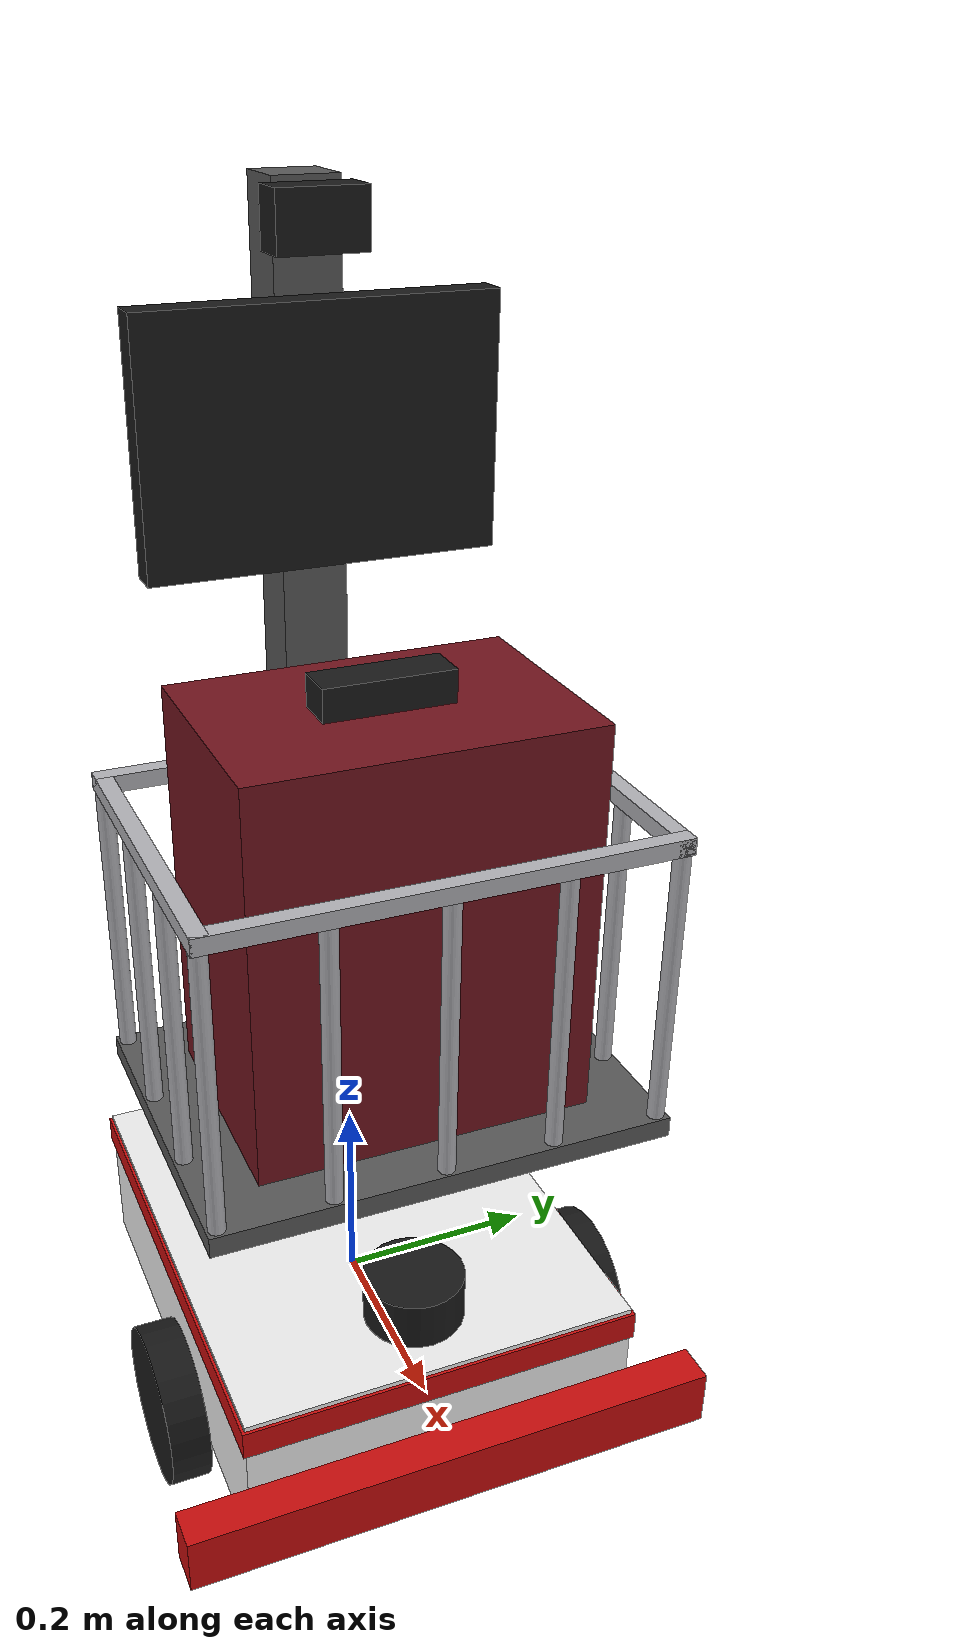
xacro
<?xml version="1.0"?>
<robot name="airport_guide" xmlns:xacro="http://www.ros.org/wiki/xacro">

  <!-- ===================== OLCULER (metre / kg) ===================== -->
  <xacro:property name="govde_x" value="0.50"/>
  <xacro:property name="govde_y" value="0.40"/>
  <xacro:property name="govde_z" value="0.16"/>
  <xacro:property name="govde_kutle" value="8.0"/>

  <xacro:property name="teker_r" value="0.08"/>
  <xacro:property name="teker_w" value="0.04"/>
  <xacro:property name="teker_kutle" value="0.5"/>
  <xacro:property name="teker_x" value="0.08"/>
  <xacro:property name="teker_y" value="0.23"/>
  <xacro:property name="teker_z" value="-0.04"/>

  <xacro:property name="caster_r" value="0.04"/>
  <xacro:property name="caster_x" value="-0.18"/>

  <xacro:property name="direk_x" value="-0.10"/>
  <xacro:property name="direk_boy" value="1.00"/>

  <!-- ===================== RENKLER ===================== -->
  <material name="beyaz"><color rgba="0.95 0.95 0.95 1"/></material>
  <material name="kirmizi"><color rgba="0.80 0.05 0.05 1"/></material>
  <material name="siyah"><color rgba="0.10 0.10 0.10 1"/></material>
  <material name="gri"><color rgba="0.35 0.35 0.35 1"/></material>

  <!-- ===================== ATALET MAKROLARI ===================== -->
  <xacro:macro name="kutu_atalet" params="m x y z">
    <inertial>
      <mass value="${m}"/>
      <inertia ixx="${m*(y*y+z*z)/12}" ixy="0" ixz="0"
               iyy="${m*(x*x+z*z)/12}" iyz="0"
               izz="${m*(x*x+y*y)/12}"/>
    </inertial>
  </xacro:macro>

  <xacro:macro name="silindir_atalet" params="m r h">
    <inertial>
      <origin rpy="${pi/2} 0 0"/>
      <mass value="${m}"/>
      <inertia ixx="${m*(3*r*r+h*h)/12}" ixy="0" ixz="0"
               iyy="${m*(3*r*r+h*h)/12}" iyz="0"
               izz="${m*r*r/2}"/>
    </inertial>
  </xacro:macro>

  <xacro:macro name="kure_atalet" params="m r">
    <inertial>
      <mass value="${m}"/>
      <inertia ixx="${2*m*r*r/5}" ixy="0" ixz="0"
               iyy="${2*m*r*r/5}" iyz="0"
               izz="${2*m*r*r/5}"/>
    </inertial>
  </xacro:macro>

  <!-- ===================== GOVDE ===================== -->
  <link name="base_link">
    <visual>
      <geometry><box size="${govde_x} ${govde_y} ${govde_z}"/></geometry>
      <material name="beyaz"/>
    </visual>
    <!-- Govdenin ust kenarinda kirmizi serit (sadece gorunus) -->
    <visual>
      <origin xyz="0 0 ${govde_z/2 - 0.02}"/>
      <geometry><box size="${govde_x + 0.006} ${govde_y + 0.006} 0.03"/></geometry>
      <material name="kirmizi"/>
    </visual>
    <collision>
      <geometry><box size="${govde_x} ${govde_y} ${govde_z}"/></geometry>
    </collision>
    <xacro:kutu_atalet m="${govde_kutle}" x="${govde_x}" y="${govde_y}" z="${govde_z}"/>
  </link>

  <!-- ===================== TAHRIK TEKERLERI ===================== -->
  <xacro:macro name="teker" params="ad y_isaret">
    <link name="${ad}_wheel_link">
      <visual>
        <origin rpy="${pi/2} 0 0"/>
        <geometry><cylinder radius="${teker_r}" length="${teker_w}"/></geometry>
        <material name="siyah"/>
      </visual>
      <collision>
        <origin rpy="${pi/2} 0 0"/>
        <geometry><cylinder radius="${teker_r}" length="${teker_w}"/></geometry>
      </collision>
      <xacro:silindir_atalet m="${teker_kutle}" r="${teker_r}" h="${teker_w}"/>
    </link>
    <joint name="${ad}_wheel_joint" type="continuous">
      <parent link="base_link"/>
      <child link="${ad}_wheel_link"/>
      <origin xyz="${teker_x} ${y_isaret*teker_y} ${teker_z}"/>
      <axis xyz="0 1 0"/>
    </joint>
  </xacro:macro>

  <xacro:teker ad="left" y_isaret="1"/>
  <xacro:teker ad="right" y_isaret="-1"/>

  <!-- ===================== SARHOS TEKER (CASTER) ===================== -->
  <link name="caster_link">
    <visual>
      <geometry><sphere radius="${caster_r}"/></geometry>
      <material name="gri"/>
    </visual>
    <collision>
      <geometry><sphere radius="${caster_r}"/></geometry>
    </collision>
    <xacro:kure_atalet m="0.2" r="${caster_r}"/>
  </link>
  <joint name="caster_joint" type="fixed">
    <parent link="base_link"/>
    <child link="caster_link"/>
    <origin xyz="${caster_x} 0 ${-govde_z/2}"/>
  </joint>
  <!-- Caster ayri link olarak kalsin ki surtunme ayari kesin olarak ona uygulansin -->
  <gazebo reference="caster_joint">
    <preserveFixedJoint>true</preserveFixedJoint>
  </gazebo>
  <gazebo reference="caster_link">
    <mu1>0.001</mu1>
    <mu2>0.001</mu2>
  </gazebo>

  <!-- ===================== DIREK + EKRAN (rehber robot gorunumu) ===================== -->
  <link name="direk_link">
    <visual>
      <geometry><box size="0.06 0.06 ${direk_boy}"/></geometry>
      <material name="gri"/>
    </visual>
    <collision>
      <geometry><box size="0.06 0.06 ${direk_boy}"/></geometry>
    </collision>
    <xacro:kutu_atalet m="1.0" x="0.06" y="0.06" z="${direk_boy}"/>
  </link>
  <joint name="direk_joint" type="fixed">
    <parent link="base_link"/>
    <child link="direk_link"/>
    <origin xyz="${direk_x} 0 ${govde_z/2 + direk_boy/2}"/>
  </joint>

  <link name="ekran_link">
    <visual>
      <geometry><box size="0.03 0.32 0.22"/></geometry>
      <material name="siyah"/>
    </visual>
    <collision>
      <geometry><box size="0.03 0.32 0.22"/></geometry>
    </collision>
    <xacro:kutu_atalet m="0.5" x="0.03" y="0.32" z="0.22"/>
  </link>
  <joint name="ekran_joint" type="fixed">
    <parent link="direk_link"/>
    <child link="ekran_link"/>
    <origin xyz="0.045 0 0.30"/>
  </joint>

  <!-- ===================== SENSORLER (ayri dosyalar) ===================== -->
  <xacro:include filename="sensors/lidar.xacro"/>
  <xacro:include filename="sensors/camera.xacro"/>
  <xacro:include filename="sensors/bumper.xacro"/>
  <xacro:include filename="bagaj.xacro"/>

  <!-- ===================== GAZEBO PLUGIN'LERI ===================== -->
  <gazebo>
    <!-- Diferansiyel surus: /cmd_vel dinler, /odom ve /tf yayinlar -->
    <plugin filename="gz-sim-diff-drive-system" name="gz::sim::systems::DiffDrive">
      <left_joint>left_wheel_joint</left_joint>
      <right_joint>right_wheel_joint</right_joint>
      <wheel_separation>${2*teker_y}</wheel_separation>
      <wheel_radius>${teker_r}</wheel_radius>
      <max_linear_acceleration>1.0</max_linear_acceleration>
      <min_linear_acceleration>-1.0</min_linear_acceleration>
      <topic>cmd_vel</topic>
      <odom_topic>odom</odom_topic>
      <tf_topic>tf</tf_topic>
      <frame_id>odom</frame_id>
      <child_frame_id>base_link</child_frame_id>
      <odom_publish_frequency>30</odom_publish_frequency>
    </plugin>
    <!-- Teker eklem acilarini yayinlar -> robot_state_publisher teker TF'lerini uretir -->
    <plugin filename="gz-sim-joint-state-publisher-system" name="gz::sim::systems::JointStatePublisher">
      <topic>joint_states</topic>
    </plugin>
  </gazebo>

</robot>

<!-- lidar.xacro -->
<robot xmlns:xacro="http://www.ros.org/wiki/xacro">

  <link name="lidar_link">
    <visual>
      <geometry><cylinder radius="0.05" length="0.05"/></geometry>
      <material name="siyah"/>
    </visual>
    <collision>
      <geometry><cylinder radius="0.05" length="0.05"/></geometry>
    </collision>
    <inertial>
      <mass value="0.2"/>
      <inertia ixx="0.00017" ixy="0" ixz="0" iyy="0.00017" iyz="0" izz="0.00025"/>
    </inertial>
  </link>

  <joint name="lidar_joint" type="fixed">
    <parent link="base_link"/>
    <child link="lidar_link"/>
    <origin xyz="0.17 0 0.105"/>
  </joint>

  <gazebo reference="lidar_link">
    <sensor name="lidar" type="gpu_lidar">
      <topic>scan</topic>
      <frame_id>lidar_link</frame_id>
      <update_rate>10</update_rate>
      <always_on>true</always_on>
      <visualize>true</visualize>
      <lidar>
        <scan>
          <horizontal>
            <samples>360</samples>
            <resolution>1</resolution>
            <min_angle>-3.14159</min_angle>
            <max_angle>3.14159</max_angle>
          </horizontal>
          <vertical>
            <samples>1</samples>
            <resolution>1</resolution>
            <min_angle>0</min_angle>
            <max_angle>0</max_angle>
          </vertical>
        </scan>
        <range>
          <min>0.12</min>
          <max>10.0</max>
          <resolution>0.01</resolution>
        </range>
        <noise>
          <type>gaussian</type>
          <mean>0.0</mean>
          <stddev>0.01</stddev>
        </noise>
      </lidar>
    </sensor>
  </gazebo>

</robot>

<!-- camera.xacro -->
<robot xmlns:xacro="http://www.ros.org/wiki/xacro">

  <link name="camera_link">
    <visual>
      <geometry><box size="0.04 0.08 0.05"/></geometry>
      <material name="siyah"/>
    </visual>
    <collision>
      <geometry><box size="0.04 0.08 0.05"/></geometry>
    </collision>
    <inertial>
      <mass value="0.1"/>
      <inertia ixx="0.00007" ixy="0" ixz="0" iyy="0.00003" iyz="0" izz="0.00007"/>
    </inertial>
  </link>

  <joint name="camera_joint" type="fixed">
    <parent link="direk_link"/>
    <child link="camera_link"/>
    <origin xyz="0.05 0 0.47"/>
  </joint>

  <gazebo reference="camera_link">
    <sensor name="camera" type="camera">
      <topic>camera/image_raw</topic>
      <frame_id>camera_link</frame_id>
      <update_rate>15</update_rate>
      <always_on>true</always_on>
      <visualize>true</visualize>
      <camera>
        <horizontal_fov>1.3963</horizontal_fov>
        <image>
          <width>640</width>
          <height>480</height>
          <format>R8G8B8</format>
        </image>
        <clip>
          <near>0.05</near>
          <far>30.0</far>
        </clip>
      </camera>
    </sensor>
  </gazebo>

</robot>

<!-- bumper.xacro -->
<robot xmlns:xacro="http://www.ros.org/wiki/xacro">

  <!-- Genislik 0.54 m: tekerlerin dis kenarini (+-0.25 m) da kapsar, yoksa teker kosesi
       engele surtunur ama bumper hic dokunmaz -->
  <link name="bumper_link">
    <visual>
      <geometry><box size="0.04 0.54 0.06"/></geometry>
      <material name="kirmizi"/>
    </visual>
    <collision>
      <geometry><box size="0.04 0.54 0.06"/></geometry>
    </collision>
    <!-- Atalet ana dosyadaki makrodan hesaplaniyor (elle yazilan degerler gecersizdi) -->
    <xacro:kutu_atalet m="0.1" x="0.04" y="0.54" z="0.06"/>
  </link>

  <joint name="bumper_joint" type="fixed">
    <parent link="base_link"/>
    <child link="bumper_link"/>
    <origin xyz="0.27 0 -0.03"/>
  </joint>

  <!-- ONEMLI: fixed joint'i KORU (reference = JOINT adi). Korunmazsa bumper_link base_link'e
       gomulur, collision adi degisir ve sensor HIC tetiklenmez. -->
  <gazebo reference="bumper_joint">
    <preserveFixedJoint>true</preserveFixedJoint>
  </gazebo>

  <gazebo reference="bumper_link">
    <sensor name="bumper" type="contact">
      <topic>bumper</topic>
      <update_rate>30</update_rate>
      <always_on>true</always_on>
      <contact>
        <collision>bumper_link_collision</collision>
        <topic>bumper</topic>
      </contact>
    </sensor>
  </gazebo>

</robot>

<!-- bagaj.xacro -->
<robot xmlns:xacro="http://www.ros.org/wiki/xacro">

  <material name="bordo"><color rgba="0.45 0.08 0.12 1"/></material>
  <material name="metal"><color rgba="0.70 0.70 0.72 1"/></material>

  <!-- ===== OLCULER ===== -->
  <xacro:property name="raf_x" value="0.32"/>
  <xacro:property name="raf_y" value="0.44"/>
  <xacro:property name="raf_z" value="0.02"/>
  <xacro:property name="demir_r" value="0.008"/>
  <xacro:property name="demir_boy" value="0.28"/>
  <xacro:property name="demir_px" value="0.15"/>   <!-- on/arka demir sirasi (raf merkezinden) -->
  <xacro:property name="demir_py" value="0.21"/>   <!-- sag/sol demir sirasi -->

  <xacro:property name="valiz_x" value="0.22"/>
  <xacro:property name="valiz_y" value="0.32"/>
  <xacro:property name="valiz_z" value="0.38"/>
  <xacro:property name="valiz_kutle" value="1.5"/>

  <!-- Kayma limitleri: demir ic yuzu (0.142 / 0.202) - valiz yarisi - donme payi -->
  <xacro:property name="kay_x" value="0.016"/>
  <xacro:property name="kay_y" value="0.030"/>
  <xacro:property name="don_lim" value="0.08"/>    <!-- ~4.6 derece -->

  <!-- ===== RAF + KAFES ===== -->
  <xacro:macro name="demir" params="x y">
    <visual>
      <origin xyz="${x} ${y} ${raf_z/2 + demir_boy/2}"/>
      <geometry><cylinder radius="${demir_r}" length="${demir_boy}"/></geometry>
      <material name="metal"/>
    </visual>
  </xacro:macro>

  <link name="raf_link">
    <visual>
      <geometry><box size="${raf_x} ${raf_y} ${raf_z}"/></geometry>
      <material name="gri"/>
    </visual>
    <collision>
      <geometry><box size="${raf_x} ${raf_y} ${raf_z}"/></geometry>
    </collision>

    <!-- on sira (5) ve arka sira (5) -->
    <xacro:demir x="${demir_px}"  y="-0.21"/>
    <xacro:demir x="${demir_px}"  y="-0.105"/>
    <xacro:demir x="${demir_px}"  y="0"/>
    <xacro:demir x="${demir_px}"  y="0.105"/>
    <xacro:demir x="${demir_px}"  y="0.21"/>
    <xacro:demir x="${-demir_px}" y="-0.21"/>
    <xacro:demir x="${-demir_px}" y="-0.105"/>
    <xacro:demir x="${-demir_px}" y="0"/>
    <xacro:demir x="${-demir_px}" y="0.105"/>
    <xacro:demir x="${-demir_px}" y="0.21"/>
    <!-- yan siralar (koseler zaten var, aradaki 2'ser demir) -->
    <xacro:demir x="-0.05" y="${demir_py}"/>
    <xacro:demir x="0.05"  y="${demir_py}"/>
    <xacro:demir x="-0.05" y="${-demir_py}"/>
    <xacro:demir x="0.05"  y="${-demir_py}"/>

    <!-- ust korkuluk -->
    <xacro:property name="ust_z" value="${raf_z/2 + demir_boy}"/>
    <visual>
      <origin xyz="${demir_px} 0 ${ust_z}"/>
      <geometry><box size="0.016 ${2*demir_py + 0.016} 0.016"/></geometry>
      <material name="metal"/>
    </visual>
    <visual>
      <origin xyz="${-demir_px} 0 ${ust_z}"/>
      <geometry><box size="0.016 ${2*demir_py + 0.016} 0.016"/></geometry>
      <material name="metal"/>
    </visual>
    <visual>
      <origin xyz="0 ${demir_py} ${ust_z}"/>
      <geometry><box size="${2*demir_px + 0.016} 0.016 0.016"/></geometry>
      <material name="metal"/>
    </visual>
    <visual>
      <origin xyz="0 ${-demir_py} ${ust_z}"/>
      <geometry><box size="${2*demir_px + 0.016} 0.016 0.016"/></geometry>
      <material name="metal"/>
    </visual>

    <xacro:kutu_atalet m="0.6" x="${raf_x}" y="${raf_y}" z="${raf_z}"/>
  </link>
  <joint name="raf_joint" type="fixed">
    <parent link="direk_link"/>
    <child link="raf_link"/>
    <!-- direk merkezi yerden 0.70 m -> raf merkezi 0.42 m; arka kenar direge dayali -->
    <origin xyz="0.19 0 -0.28"/>
  </joint>

  <!-- ===== VALIZ: x -> y -> yaw eklem zinciri ===== -->
  <!-- Ara linkler sadece eklem zinciri icin; kucuk ama sifir olmayan kutle (Gazebo istiyor) -->
  <xacro:macro name="ara_link" params="ad">
    <link name="${ad}">
      <inertial>
        <mass value="0.05"/>
        <inertia ixx="1e-5" ixy="0" ixz="0" iyy="1e-5" iyz="0" izz="1e-5"/>
      </inertial>
    </link>
  </xacro:macro>
  <xacro:ara_link ad="valiz_x_link"/>
  <xacro:ara_link ad="valiz_y_link"/>

  <joint name="valiz_x_joint" type="prismatic">
    <parent link="raf_link"/>
    <child link="valiz_x_link"/>
    <origin xyz="0 0 ${raf_z/2 + valiz_z/2}"/>
    <axis xyz="1 0 0"/>
    <limit lower="${-kay_x}" upper="${kay_x}" effort="100" velocity="10"/>
    <dynamics damping="0.0" friction="0.0"/>
  </joint>

  <joint name="valiz_y_joint" type="prismatic">
    <parent link="valiz_x_link"/>
    <child link="valiz_y_link"/>
    <axis xyz="0 1 0"/>
    <limit lower="${-kay_y}" upper="${kay_y}" effort="100" velocity="10"/>
    <dynamics damping="0.0" friction="0.0"/>
  </joint>

  <link name="valiz_link">
    <visual>
      <geometry><box size="${valiz_x} ${valiz_y} ${valiz_z}"/></geometry>
      <material name="bordo"/>
    </visual>
    <!-- tutma sapi -->
    <visual>
      <origin xyz="0 0 ${valiz_z/2 + 0.015}"/>
      <geometry><box size="0.04 0.12 0.03"/></geometry>
      <material name="siyah"/>
    </visual>
    <collision>
      <geometry><box size="${valiz_x} ${valiz_y} ${valiz_z}"/></geometry>
    </collision>
    <xacro:kutu_atalet m="${valiz_kutle}" x="${valiz_x}" y="${valiz_y}" z="${valiz_z}"/>
  </link>

  <joint name="valiz_yaw_joint" type="revolute">
    <parent link="valiz_y_link"/>
    <child link="valiz_link"/>
    <axis xyz="0 0 1"/>
    <limit lower="${-don_lim}" upper="${don_lim}" effort="100" velocity="10"/>
    <dynamics damping="0.0" friction="0.0"/>
  </joint>

</robot>
